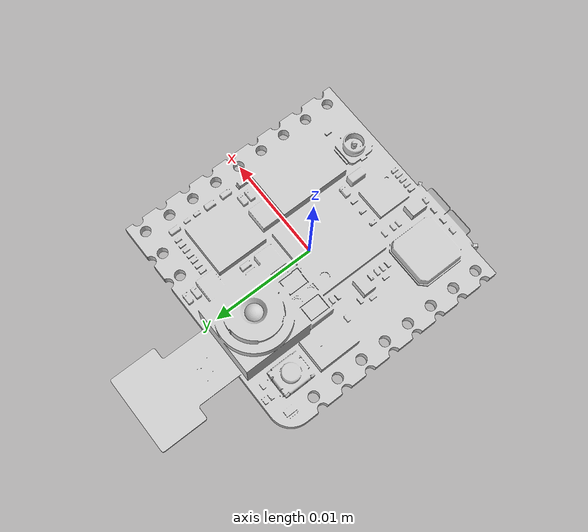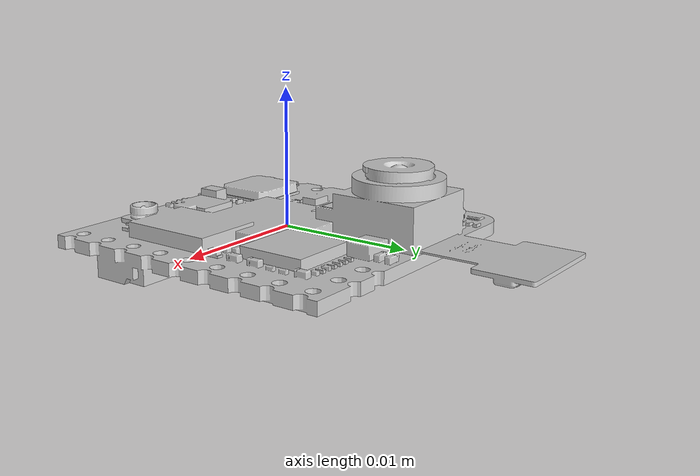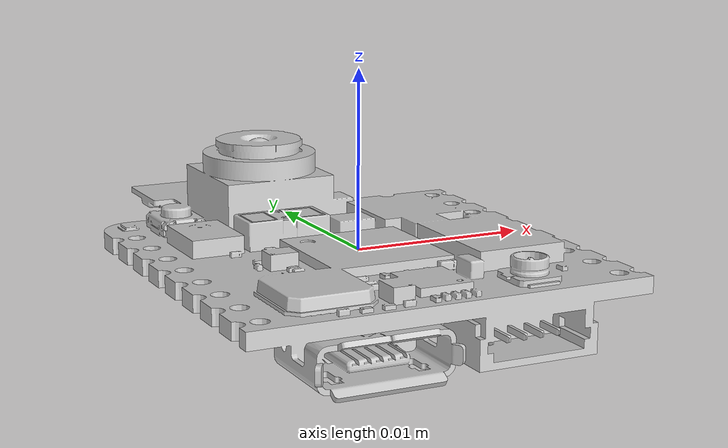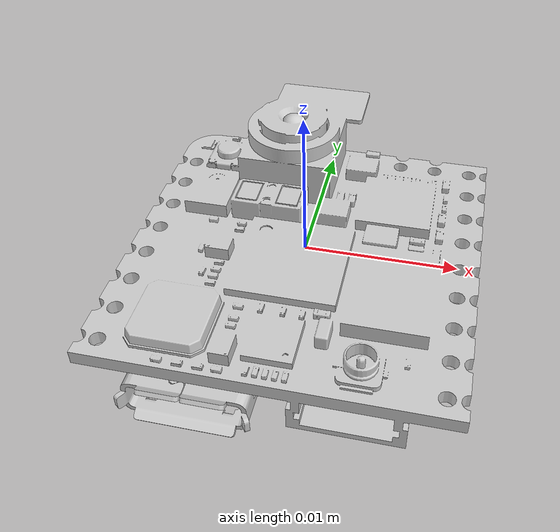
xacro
<?xml version="1.0"?>
<robot xmlns:xacro="http://ros.org/wiki/xacro" name="nicla">

<xacro:include filename="$(find nicla_vision_ros2)/urdf/nicla_macro.urdf.xacro" />

<link name="world"/>

<xacro:nicla_box name="nicla" parent_link="world">
  <origin xyz="0 0 0" rpy="0 0 0"/>
</xacro:nicla_box>

</robot>

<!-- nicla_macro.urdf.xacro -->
<robot xmlns:xacro="http://ros.org/wiki/xacro">

<xacro:arg name="nicla_camera" default="true"/>
<xacro:arg name="nicla_tof" default="true"/>
<xacro:arg name="nicla_tof_visualize" default="true"/>
<xacro:arg name="nicla_mic" default="true"/>
<xacro:arg name="nicla_imu" default="true"/>

<xacro:arg name="use_mesh" default="true"/>

<xacro:property name="NICLA_CAMERA" value="$(arg nicla_camera)" />
<xacro:property name="NICLA_TOF" value="$(arg nicla_tof)" />
<xacro:property name="nicla_tof_visualize" value="$(arg nicla_tof_visualize)" />
<xacro:property name="NICLA_MIC" value="$(arg nicla_mic)" />
<xacro:property name="NICLA_IMU" value="$(arg nicla_imu)" />

<xacro:property name="USE_MESH" value="$(arg use_mesh)"/>

<xacro:property name="PI_2" value="1.57079632679" />
<xacro:property name="PI" value="3.14159265359" />

<xacro:macro name="nicla_box" params="name:=nicla parent_link *origin">

    <link name="${name}_base">
        <visual>
            <xacro:if value="${USE_MESH}">
                <origin xyz="-0.01143 -0.01143 0" rpy="0 0 0" />
                <geometry>
                    <mesh filename="package://nicla_vision_ros2/urdf/meshes/niclavision.dae" scale="0.001 0.001 0.001" />
                </geometry>
            </xacro:if>
            <xacro:unless value="${USE_MESH}">
                <origin xyz="0 0 0" rpy="0 0 0" />
                <geometry>
                    <box size="0.02286  0.02286 0.004"/>
                </geometry>
            </xacro:unless>
        </visual>
        <collision>
            <origin xyz="0 0 0" rpy="0 0 0" />
            <geometry>
                <box size="0.02286  0.02286 0.004"/>
            </geometry>
        </collision>
        <inertial>
            <origin xyz="0 0 0" rpy="0 0 0" />
            <mass value="0.01"/>
            <inertia ixx="0.01"  ixy="0"  ixz="0" iyy="0.01" iyz="0" izz="0.01" />
        </inertial>
    </link>
  	<joint name="${parent_link}_to_${name}_base" type="fixed">
    	<xacro:insert_block name="origin"/>
        <parent link="${parent_link}"/>
        <child link="${name}_base"/>
    </joint>

    <xacro:if value="${NICLA_CAMERA}">
        <link name="${name}_camera"></link>
        <joint name="${name}_base_to_camera" type="fixed">
            <origin xyz="-0.00255 0.00778 0.0045" rpy="0 ${-PI_2} ${PI/2}"/>
            <parent link="${name}_base"/>
            <child link="${name}_camera"/>
        </joint>

        <!-- gazebo simulated camera -->
        <gazebo reference="${name}_camera">
        <sensor type="camera" name="${name}_camera">
        <update_rate>30.0</update_rate>
        <camera name="${name}_camera">
            <horizontal_fov>0.69813</horizontal_fov>  <!-- 80deg 1.39626rad-->
            <image>
                <width>320</width>
                <height>240</height>
                <format>R8G8B8</format>
            </image>
            <clip>
                <near>0.1</near>
                <far>100</far>
            </clip>
        </camera>
        <plugin name="gazebo_ros_${name}_camera_controller" filename="libgazebo_ros_camera.so">
            <alwaysOn>true</alwaysOn>
            <updateRate>0.0</updateRate>
            <cameraName>${name}/camera</cameraName>
            <imageTopicName>image_raw</imageTopicName>
            <cameraInfoTopicName>camera_info</cameraInfoTopicName>
            <frameName>${name}_camera</frameName>

            <!-- Set to 0.0 -->
            <!-- Set to your k1 value -->
            <!-- Set to your k2 value -->
            <!-- Set to your k3 value -->
            <!-- Set to your p1 value -->
            <!-- Set to your p2 value -->
            <!-- Set to 0 -->
            <!-- Set to your Cx value -->
            <!-- Set to your Cy value -->
            <!-- Set to your focal length value-->

        </plugin>
        </sensor>
        </gazebo>

    </xacro:if>

    <xacro:if value="${NICLA_TOF}">
        <link name="${name}_tof"></link>
        <joint name="${name}_base_to_tof" type="fixed">
            <origin xyz="-0.003 0.0032 0.0017" rpy="0 ${-PI_2} 0"/>
            <parent link="${name}_base"/>
            <child link="${name}_tof"/>
        </joint>

        <!-- gazebo simulated tof -->
        <gazebo reference="${name}_tof">
        <sensor type="ray" name="${name}_tof">
        <pose>0 0 0 0 0 0</pose>
        <visualize>${nicla_tof_visualize}</visualize>
        <update_rate>50</update_rate>
        <ray>
            <scan>
            <horizontal>
                <samples>1</samples>
                <resolution>1</resolution>
                <min_angle>0</min_angle>
                <max_angle>0</max_angle>
            </horizontal>
            </scan>
            <range>
            <min>0.04</min>
            <max>4</max>
            <resolution>0.03</resolution>
            </range>
        </ray>
        <plugin name="gazebo_ros_${name}_tof_controller" filename="libgazebo_ros_laser.so">
            <topicName>${name}/tof</topicName>
            <frameName>${name}_tof</frameName>
        </plugin>
        </sensor>
        </gazebo>
    </xacro:if>

    <xacro:if value="${NICLA_MIC}">
        <link name="${name}_mic"></link>
        <joint name="${name}_base_to_mic" type="fixed">
            <origin xyz="-0.0073 0.0048 0.0013" rpy="0 0 0"/>
            <parent link="${name}_base"/>
            <child link="${name}_mic"/>
        </joint>
    </xacro:if>

    <xacro:if value="${NICLA_IMU}">
        <link name="${name}_imu"></link>
        <joint name="${name}_base_to_imu" type="fixed">
            <origin xyz="-0.0078 -0.0046 -0.0015" rpy="0 0 0"/>
            <parent link="${name}_base"/>
            <child link="${name}_imu"/>
        </joint>

        <gazebo reference="${name}_imu">
            <gravity>true</gravity>
            <sensor name="${name}_imu_sensor" type="imu">
            <always_on>true</always_on>
            <update_rate>100</update_rate>
            <visualize>true</visualize>
            <topic>{name}/imu</topic>
            <plugin filename="libgazebo_ros_imu_sensor.so" name="imu_plugin">
                <topicName>${name}/imu</topicName>
                <bodyName>${name}_imu</bodyName>
                <updateRateHZ>833</updateRateHZ>
                <gaussianNoise>0.0</gaussianNoise>
                <xyzOffset>0 0 0</xyzOffset>
                <rpyOffset>0 0 0</rpyOffset>
                <frameName>${name}_imu</frameName>
                <initialOrientationAsReference>false</initialOrientationAsReference>
            </plugin>
            <pose>0 0 0 0 0 0</pose>
            </sensor>
        </gazebo>

    </xacro:if>

</xacro:macro>

</robot>
